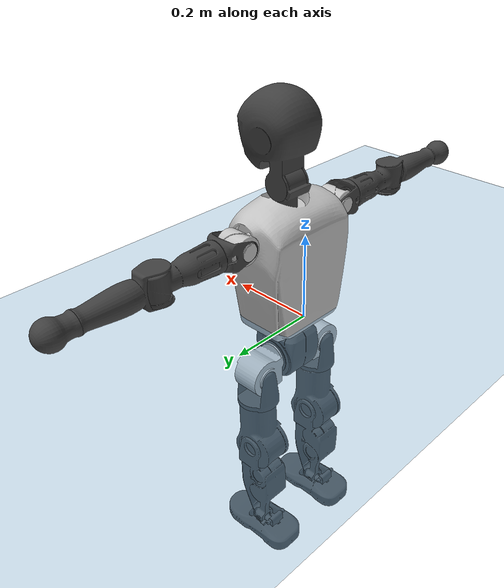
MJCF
<mujoco model="T1">
  <compiler angle="radian" assetdir="assets" balanceinertia="true" inertiafromgeom="false"/>

  <option timestep="0.005" density="1.2" viscosity="2e-05"/>

  <size nkey="1"/>

  <visual>
    <quality shadowsize="8192"/>
    <map shadowclip="0.5"/>
  </visual>

  <default>
    <default class="/">
      <joint armature="0.01" damping="0.01" frictionloss="0.1"/>
      <geom contype="0" conaffinity="0" group="1" solref="-1000 -80"/>
      <site size="0.01 0.005 0.005" group="5"/>
      <general forcelimited="true" biastype="affine" gainprm="25" biasprm="0 -25 -0.6"/>
      <default class="t1">
        <geom rgba="0.25 0.25 0.25 1"/>
        <default class="visual">
          <geom type="mesh" group="2"/>
        </default>
        <default class="collision">
          <geom group="3"/>
        </default>
        <default class="foot">
          <geom size="0.1115 0.05 0.015" type="box" condim="6" group="4" priority="1" solimp="0.015 1 0.015"/>
        </default>
        <default class="reward_collision_sphere">
          <geom group="5" rgba="1 0 0 1"/>
        </default>
      </default>
    </default>
  </default>

  <asset>
    <texture type="skybox" colorspace="auto" name="//unnamed_texture_0" builtin="gradient" rgb1="0.95 0.95 0.95" rgb2="0.95 0.95 0.95" width="100" height="600"/>
    <texture type="2d" colorspace="auto" name="texplane" builtin="checker" rgb1="0.345 0.575 0.748" rgb2="0.345 0.575 0.748" markrgb="1 1 1" width="512" height="512"/>
    <material name="MatPlane" class="/" texture="texplane" texuniform="true" texrepeat="2 2" specular="0.9"/>
    <mesh name="Trunk" class="/" file="Trunk.stl"/>
    <mesh name="H1" class="/" file="H1.stl"/>
    <mesh name="H2" class="/" file="H2.stl"/>
    <mesh name="AL1" class="/" file="AL1.stl"/>
    <mesh name="AL2" class="/" file="AL2.stl"/>
    <mesh name="AL3" class="/" file="AL3.stl"/>
    <mesh name="left_hand_link" class="/" file="left_hand_link.stl"/>
    <mesh name="AR1" class="/" file="AR1.stl"/>
    <mesh name="AR2" class="/" file="AR2.stl"/>
    <mesh name="AR3" class="/" file="AR3.stl"/>
    <mesh name="right_hand_link" class="/" file="right_hand_link.stl"/>
    <mesh name="Waist" class="/" file="Waist.stl"/>
    <mesh name="Hip_Pitch_Left" class="/" file="Hip_Pitch_Left.stl"/>
    <mesh name="Hip_Roll_Left" class="/" file="Hip_Roll_Left.stl"/>
    <mesh name="Hip_Yaw_Left" class="/" file="Hip_Yaw_Left.stl"/>
    <mesh name="Shank_Left" class="/" file="Shank_Left.stl"/>
    <mesh name="Ankle_Cross_Left" class="/" file="Ankle_Cross_Left.stl"/>
    <mesh name="left_foot_link" class="/" file="left_foot_link.stl"/>
    <mesh name="Hip_Pitch_Right" class="/" file="Hip_Pitch_Right.stl"/>
    <mesh name="Hip_Roll_Right" class="/" file="Hip_Roll_Right.stl"/>
    <mesh name="Hip_Yaw_Right" class="/" file="Hip_Yaw_Right.stl"/>
    <mesh name="Shank_Right" class="/" file="Shank_Right.stl"/>
    <mesh name="Ankle_Cross_Right" class="/" file="Ankle_Cross_Right.stl"/>
    <mesh name="right_foot_link" class="/" file="right_foot_link.stl"/>
  </asset>

  <worldbody>
    <geom name="floor" class="/" size="100 100 0.125" type="plane" group="0" material="MatPlane"/>
    <light name="toplight_shadow" class="/" pos="0 0 5" dir="0.0990148 0.0990148 -0.990148" type="directional" ambient="0.04 0.04 0.04" diffuse="0.55 0.55 0.55" specular="0.12 0.12 0.12"/>
    <light name="toplight_fill" class="/" pos="0 0 5" dir="0.0990148 0.0990148 -0.990148" type="directional" castshadow="false" ambient="0.04 0.04 0.04" diffuse="0.3 0.3 0.3" specular="0.08 0.08 0.08"/>
    <body name="trunk" childclass="t1" pos="0.000307362 -0.000338252 0.000170385" quat="1 0.000272244 -0.000231773 0.000367777">
      <inertial pos="0.0456651 -0.00160765 0.102164" quat="0.99996 -0.000622205 -0.0089416 0.000585973" mass="9.2568" diaginertia="0.0369452 0.0593018 0.0502035"/>
      <joint name="//unnamed_joint_0" type="free" armature="0" damping="0" frictionloss="0"/>
      <geom name="//unnamed_geom_1" class="visual" rgba="0.76 0.76 0.76 1" mesh="Trunk"/>
      <geom name="//unnamed_geom_2" class="collision" size="0.0690204 0.0920272 0.138041" pos="0.0499461 0 0.117678" type="box"/>
      <geom name="//unnamed_geom_3" class="reward_collision_sphere" size="0.105831" pos="0.0499461 0 0.0980646"/>
      <geom name="//unnamed_geom_4" class="reward_collision_sphere" size="0.0138041" pos="0.0499461 0.0805574 0"/>
      <geom name="//unnamed_geom_5" class="reward_collision_sphere" size="0.0138041" pos="0.0499461 -0.0805574 0"/>
      <geom name="//unnamed_geom_6" class="reward_collision_sphere" size="0.0138041" pos="0.0499461 0.101408 0.176516"/>
      <geom name="//unnamed_geom_7" class="reward_collision_sphere" size="0.0138041" pos="0.0499461 -0.101408 0.176516"/>
      <site name="imu" pos="-0.00999101 0.0105546 -0.00963425" size="0.00920272"/>
      <camera name="track" pos="0 -1.89547 0" quat="0.707107 0.707107 0 0" mode="trackcom"/>
      <camera name="ego_camera" pos="0.101557 0 0.411872" quat="-0.5 -0.5 0.5 0.5"/>
      <body name="H1" pos="0.0513395 0.000185764 0.238938" quat="1 0.000549347 0.000130926 -0.000798898">
        <inertial pos="-0.00125805 -0.000947166 0.0553232" quat="0.764351 -0.0127987 0.00114386 0.644672" mass="0.362182" diaginertia="9.72939e-05 0.000172011 0.000138125"/>
        <joint name="AAHead_yaw" pos="0 0 0" axis="-0.00152855 -0.000273809 0.999999" stiffness="0.000169465" range="-1.57014 1.5747" armature="0.0102066" damping="0.0010352" frictionloss="0.0906908"/>
        <geom name="//unnamed_geom_8" class="visual" mesh="H1"/>
        <body name="H2" pos="0.00176669 -9.22668e-05 0.0605525" quat="1 0.000349018 -4.33158e-05 0.000131405">
          <inertial pos="0.00599919 0.00141751 0.0963655" quat="0.98845 0.106156 -0.0745935 -0.0783212" mass="0.496283" diaginertia="0.000812797 0.00146916 0.00155492"/>
          <joint name="Head_pitch" pos="0 0 0" axis="0.00244234 -0.999997 -0.000931703" range="-1.22043 0.355378" armature="0.00863186" damping="0.00646109" frictionloss="0.0900392"/>
          <geom name="//unnamed_geom_9" class="visual" mesh="H2"/>
          <geom name="//unnamed_geom_10" class="collision" size="0.0736217" pos="0.00832435 0 0.107871"/>
          <geom name="//unnamed_geom_11" class="reward_collision_sphere" size="0.0828245" pos="0.0166487 0 0.0980646"/>
        </body>
      </body>
      <body name="AL1" pos="0.0475429 0.100394 0.213826" quat="1 0.000106233 0.000877713 4.26467e-05">
        <inertial pos="-0.00093648 0.0434908 -0.000148445" quat="0.503653 0.495868 -0.504578 0.495832" mass="0.414981" diaginertia="0.000544455 0.0010004 0.000268547"/>
        <joint name="Left_Shoulder_Pitch" pos="0 0 0" axis="-0.00376996 0.999992 -0.000900904" range="-3.32813 1.20915" armature="0.00963817" damping="0.00988425" frictionloss="0.0923546"/>
        <geom name="//unnamed_geom_12" class="visual" rgba="0.76 0.76 0.76 1" mesh="AL1"/>
        <body name="AL2" pos="0.00123526 0.0441812 5.69948e-05" quat="1 -1.33778e-05 -4.02581e-05 -5.32324e-05">
          <inertial pos="0.00354792 0.0364405 0.00122862" quat="0.487068 0.511996 -0.487867 0.512456" mass="0.12738" diaginertia="0.000160573 0.000259162 0.000159319"/>
          <joint name="Left_Shoulder_Roll" pos="0 0 0" axis="-0.999998 -0.00135918 -0.00155172" range="-1.53379 1.77883" armature="0.00836913" damping="0.0049812" frictionloss="0.0913607"/>
          <geom name="//unnamed_geom_13" class="visual" mesh="AL2"/>
          <body name="AL3" pos="0.00146949 0.0571789 -0.000843188" quat="1 1.9269e-05 -7.85156e-05 -7.38727e-05">
            <inertial pos="-0.000138806 0.0807639 -0.000109006" quat="0.704637 0.709562 -0.00202034 -0.00194556" mass="0.801531" diaginertia="0.00518018 0.00990888 0.000554368"/>
            <joint name="Left_Elbow_Pitch" pos="0 0 0" axis="0.00825787 -0.999937 -0.00755092" range="-2.23263 2.28836" armature="0.00812388" damping="0.00236031" frictionloss="0.0899861"/>
            <geom name="//unnamed_geom_14" class="visual" mesh="AL3"/>
            <geom name="//unnamed_geom_15" class="collision" size="0.0276082 0.0690204" pos="0 0.0473867 0" quat="0.707105 0.707108 0 0" type="cylinder"/>
            <geom name="//unnamed_geom_16" class="reward_collision_sphere" size="0.0331298"/>
            <body name="left_hand_link" pos="0.00012307 0.140418 0.0011469" quat="1 0.000152709 -0.000444204 2.35883e-05">
              <inertial pos="-0.00052969 0.103955 -0.000230501" quat="0.707987 0.706226 -0.000176299 -0.000444733" mass="0.252623" diaginertia="0.00328905 0.00630086 0.000192069"/>
              <joint name="Left_Elbow_Yaw" pos="0 0 0" axis="0.000558092 0.00437455 0.99999" range="-2.42673 0.00850088" armature="0.0101647" damping="0.0153961" frictionloss="0.0936179"/>
              <geom name="//unnamed_geom_17" class="visual" mesh="left_hand_link"/>
              <geom name="//unnamed_geom_18" class="collision" size="0.0276082 0.0805238" pos="0 0.123205 0" quat="0.707105 0.707108 0 0" type="cylinder"/>
              <geom name="//unnamed_geom_19" class="reward_collision_sphere" size="0.0460136"/>
              <geom name="//unnamed_geom_20" class="reward_collision_sphere" size="0.0322095" pos="0 0.104251 0"/>
              <geom name="//unnamed_geom_21" class="reward_collision_sphere" size="0.0322095" pos="0 0.203763 0"/>
            </body>
          </body>
        </body>
      </body>
      <body name="AR1" pos="0.0461868 -0.100016 0.214572" quat="1 -0.000126243 0.0005099 -0.00032237">
        <inertial pos="-0.00288913 -0.0438064 0.000351528" quat="0.502547 0.487669 -0.506209 0.503366" mass="0.410087" diaginertia="0.000551991 0.000998457 0.000272434"/>
        <joint name="Right_Shoulder_Pitch" pos="0 0 0" axis="0.00365375 -0.999993 -0.000948281" stiffness="0.00399433" range="-1.22783 3.31313" armature="0.00914139" damping="0.00605505" frictionloss="0.0901753"/>
        <geom name="//unnamed_geom_22" class="visual" rgba="0.76 0.76 0.76 1" mesh="AR1"/>
        <body name="AR2" pos="8.1564e-05 -0.0426951 -0.000173566" quat="1 0.000428775 0.000374449 -0.000190334">
          <inertial pos="0.00201215 -0.0355989 -5.91927e-05" quat="0.511792 0.4884 -0.511434 0.487821" mass="0.123801" diaginertia="0.000161169 0.000269121 0.000159161"/>
          <joint name="Right_Shoulder_Roll" pos="0 0 0" axis="-0.999983 0.000636763 -0.0057878" stiffness="0.00052735" range="-1.75035 1.61408" armature="0.00889811" damping="0.00801495" frictionloss="0.0927666"/>
          <geom name="//unnamed_geom_23" class="visual" mesh="AR2"/>
          <body name="AR3" pos="-0.000812745 -0.0573446 -0.000699643" quat="1 -1.16489e-05 -3.24858e-06 5.36833e-05">
            <inertial pos="-0.000524545 -0.0829026 0.00121766" quat="0.709257 0.704947 -0.000559162 -0.00177683" mass="0.789101" diaginertia="0.0050951 0.00971366 0.000569142"/>
            <joint name="Right_Elbow_Pitch" pos="0 0 0" axis="-0.000926423 0.999993 0.00356823" range="-2.27536 2.25682" armature="0.00929142" damping="0.0132513" frictionloss="0.0922642"/>
            <geom name="//unnamed_geom_24" class="visual" mesh="AR3"/>
            <geom name="//unnamed_geom_25" class="collision" size="0.0276082 0.0690204" pos="0 -0.0473867 0" quat="0.707105 0.707108 0 0" type="cylinder"/>
            <geom name="//unnamed_geom_26" class="reward_collision_sphere" size="0.0331298"/>
            <body name="right_hand_link" pos="-0.000525589 -0.138999 -0.000164192" quat="1 0.000227019 -0.000110759 0.000194021">
              <inertial pos="-0.000665618 -0.103609 0.00022663" quat="0.705321 0.708885 -0.000604984 -0.00211161" mass="0.259365" diaginertia="0.00325031 0.00624477 0.000194814"/>
              <joint name="Right_Elbow_Yaw" pos="0 0 0" axis="-0.00254905 0.00094275 0.999996" range="0.00452521 2.43273" armature="0.00930815" damping="0.010577" frictionloss="0.0929342"/>
              <geom name="//unnamed_geom_27" class="visual" mesh="right_hand_link"/>
              <geom name="//unnamed_geom_28" class="collision" size="0.0276082 0.0805238" pos="0 -0.123205 0" quat="0.707105 0.707108 0 0" type="cylinder"/>
              <geom name="//unnamed_geom_29" class="reward_collision_sphere" size="0.0460136"/>
              <geom name="//unnamed_geom_30" class="reward_collision_sphere" size="0.0322095" pos="0 -0.104251 0"/>
              <geom name="//unnamed_geom_31" class="reward_collision_sphere" size="0.0322095" pos="0 -0.203763 0"/>
            </body>
          </body>
        </body>
      </body>
      <body name="Waist" pos="0.0535736 -0.00206024 -0.113478" quat="1 -0.000249822 -5.76238e-05 -0.000348486">
        <inertial pos="-0.000734408 -0.000411337 0.0071771" quat="0.983172 -9.06206e-05 -0.182663 0.00269709" mass="2.05941" diaginertia="0.00211223 0.00413799 0.00431462"/>
        <joint name="Waist" pos="0 0 0" axis="-0.00861698 0.00457613 0.999952" range="-1.5917 1.58888" armature="0.0095569" damping="0.023684" frictionloss="0.0935767"/>
        <geom name="//unnamed_geom_32" class="visual" mesh="Waist"/>
        <body name="Hip_Pitch_Left" pos="-0.00129133 0.101009 0.000144342" quat="0.999999 -0.000153615 0.000450619 0.0013594">
          <inertial pos="0.000183383 -0.00522858 -0.0182548" quat="0.975051 0.221501 0.0144578 0.0018311" mass="0.7667" diaginertia="0.000703203 0.00109488 0.00113458"/>
          <joint name="Left_Hip_Pitch" pos="0 0 0" axis="-0.00702328 0.999974 -0.00185896" range="-1.782 1.57238" armature="0.00879342" damping="0.00769145" frictionloss="0.101927"/>
          <geom name="//unnamed_geom_33" class="visual" rgba="0.76 0.76 0.76 1" mesh="Hip_Pitch_Left"/>
          <body name="Hip_Roll_Left" pos="0.00258217 0.000950268 -0.0222725" quat="1 0.000209033 0.000870801 0.000284512">
            <inertial pos="0.00129352 0.00093008 -0.0545989" quat="0.707394 -0.0035983 -0.00707918 0.706775" mass="0.297028" diaginertia="0.000690505 0.00115586 0.000463933"/>
            <joint name="Left_Hip_Roll" pos="0 0 0" axis="-0.999997 0.000365859 -0.00221292" stiffness="0.0003175" range="-1.5711 0.199942" armature="0.00935171" damping="0.0156631" frictionloss="0.0925074"/>
            <geom name="//unnamed_geom_34" class="visual" mesh="Hip_Roll_Left"/>
            <geom name="//unnamed_geom_35" class="reward_collision_sphere" size="0.0506149"/>
            <body name="Hip_Yaw_Left" pos="0.00140808 -0.00106349 -0.0810499" quat="1 -0.000138033 -0.000249391 -6.64745e-05">
              <inertial pos="-0.005418 0.00182412 -0.0857329" quat="0.69768 -0.0375805 -0.0332703 0.714649" mass="1.67032" diaginertia="0.0102061 0.0191936 0.00233865"/>
              <joint name="Left_Hip_Yaw" pos="0 0 0" axis="-0.00215756 -0.00579712 -0.999981" range="-1.01487 1.00807" armature="0.00924653" damping="0.013111" frictionloss="0.0925458"/>
              <geom name="//unnamed_geom_36" class="visual" mesh="Hip_Yaw_Left"/>
              <geom name="//unnamed_geom_37" class="collision" size="0.0460136 0.0736217" type="cylinder"/>
              <body name="Shank_Left" pos="-0.00924547 -0.000178013 -0.131502" quat="1 -0.00036732 -0.000120559 -2.18683e-06">
                <inertial pos="-0.0052938 0.000891655 -0.123005" quat="0.997203 -0.00513987 -0.0234293 0.0707802" mass="1.3592" diaginertia="0.0139145 0.0263916 0.00169728"/>
                <joint name="Left_Knee_Pitch" pos="0 0 0" axis="-0.000213766 1 -0.000283883" stiffness="0.000352421" range="0.00476768 2.31241" armature="0.00954492" damping="0.00925362" frictionloss="0.0916905"/>
                <geom name="//unnamed_geom_38" class="visual" mesh="Shank_Left"/>
                <geom name="//unnamed_geom_39" class="collision" size="0.0460136 0.0690204" pos="0 0 -0.117678" type="cylinder"/>
                <geom name="//unnamed_geom_40" class="reward_collision_sphere" size="0.0598177"/>
                <body name="Ankle_Cross_Left" pos="-0.000819377 -0.00091967 -0.274948" quat="1 7.45873e-06 -3.29395e-05 0.000367336">
                  <inertial pos="-0.00342383 0.000437737 -0.00882907" quat="0.446357 0.549843 0.549806 0.442891" mass="0.0565476" diaginertia="1.16215e-05 1.94433e-05 1.02093e-05"/>
                  <joint name="Left_Ankle_Pitch" pos="0 0 0" axis="0.00199382 0.999995 -0.00235782" range="-0.912462 0.389887" armature="0.00908964" damping="0" frictionloss="0.091012"/>
                  <geom name="//unnamed_geom_41" class="visual" mesh="Ankle_Cross_Left"/>
                  <body name="left_foot_link" pos="-0.000577505 0.000728883 -0.0136791" quat="0.999999 -0.000415751 0.00101884 -0.000144337">
                    <inertial pos="0.000783618 -0.000656735 -0.00835594" quat="-0.00123573 0.620465 -0.00442593 0.784221" mass="0.549596" diaginertia="0.0011235 0.00187939 0.0021035"/>
                    <joint name="Left_Ankle_Roll" pos="0 0 0" axis="-0.999998 0.0021034 0.000415514" stiffness="0.000735206" range="-0.446181 0.484038" armature="0.00924648" damping="0.0105181" frictionloss="0.103218"/>
                    <geom name="//unnamed_geom_42" class="visual" mesh="left_foot_link"/>
                    <geom name="left_foot" class="foot" size="0.105663 0.0434499 0.0152226" pos="0.00832435 0 -0.0147097"/>
                    <geom name="//unnamed_geom_44" class="reward_collision_sphere" size="0.0478541" pos="0.00832435 0 -0.0147097"/>
                    <geom name="//unnamed_geom_45" class="reward_collision_sphere" size="0.0276082" pos="0.0790813 -0.0217979 -0.0147097"/>
                    <geom name="//unnamed_geom_46" class="reward_collision_sphere" size="0.0276082" pos="-0.0582704 -0.0217979 -0.0147097"/>
                    <site name="left_foot" class="foot" pos="0.00832435 0 -0.0147097" size="0.00920272"/>
                  </body>
                </body>
              </body>
            </body>
          </body>
        </body>
        <body name="Hip_Pitch_Right" pos="4.61652e-05 -0.100556 -0.000201361" quat="1 6.88497e-05 6.80584e-05 2.11048e-05">
          <inertial pos="0.00150406 0.00706596 -0.0167684" quat="0.974304 -0.224363 0.0192023 0.00490666" mass="0.782684" diaginertia="0.00070015 0.00107831 0.00111463"/>
          <joint name="Right_Hip_Pitch" pos="0 0 0" axis="-0.00128756 -0.999999 -0.000263816" stiffness="0.00276931" range="-1.56376 1.80662" armature="0.00885374" damping="0.00727344" frictionloss="0.0908318"/>
          <geom name="//unnamed_geom_47" class="visual" rgba="0.76 0.76 0.76 1" mesh="Hip_Pitch_Right"/>
          <body name="Hip_Roll_Right" pos="0.000531617 6.45498e-05 -0.021372" quat="1 0.000150621 2.11922e-06 0.000144783">
            <inertial pos="0.000784016 -0.000644691 -0.0524707" quat="0.707492 -0.00388678 -0.00865116 0.706657" mass="0.294323" diaginertia="0.000693 0.00115678 0.000454696"/>
            <joint name="Right_Hip_Roll" pos="0 0 0" axis="-0.999996 0.000225912 0.00278753" range="-0.199577 1.56742" armature="0.00939562" damping="0.00697418" frictionloss="0.0914219"/>
            <geom name="//unnamed_geom_48" class="visual" mesh="Hip_Roll_Right"/>
            <geom name="//unnamed_geom_49" class="reward_collision_sphere" size="0.0506149"/>
            <body name="Hip_Yaw_Right" pos="-0.00108679 0.00201822 -0.0808732" quat="1 1.20129e-05 -2.17904e-05 1.65277e-05">
              <inertial pos="-0.0062781 -8.06076e-05 -0.0898527" quat="0.711167 -0.0298299 -0.0319469 0.701663" mass="1.71411" diaginertia="0.0102716 0.0194224 0.00235881"/>
              <joint name="Right_Hip_Yaw" pos="0 0 0" axis="-0.000763385 0.000592927 -1" range="-0.974589 1.00873" armature="0.00942184" damping="0.0128027" frictionloss="0.0927446"/>
              <geom name="//unnamed_geom_50" class="visual" mesh="Hip_Yaw_Right"/>
              <geom name="//unnamed_geom_51" class="collision" size="0.0460136 0.0736217" type="cylinder"/>
              <body name="Shank_Right" pos="-0.01197 0.000258244 -0.131155" quat="1 -0.000142806 -8.59257e-06 -0.00020799">
                <inertial pos="-0.00267263 -0.0010058 -0.119381" quat="0.999394 -0.00497155 -0.0224135 -0.0261566" mass="1.36696" diaginertia="0.0138384 0.0268045 0.00175647"/>
                <joint name="Right_Knee_Pitch" pos="0 0 0" axis="0.00305729 -0.999982 -0.00522213" range="-2.3395 -0.000903336" armature="0.00917841" damping="0.000985229" frictionloss="0.0961979"/>
                <geom name="//unnamed_geom_52" class="visual" mesh="Shank_Right"/>
                <geom name="//unnamed_geom_53" class="collision" size="0.0460136 0.0690204" pos="0 0 -0.117678" type="cylinder"/>
                <geom name="//unnamed_geom_54" class="reward_collision_sphere" size="0.0598177"/>
                <body name="Ankle_Cross_Right" pos="0.00143775 -0.00298885 -0.275091" quat="0.999999 -0.00054144 0.000817058 0.000414209">
                  <inertial pos="-0.00260617 0.000611361 -0.00808837" quat="0.443901 0.550766 0.550706 0.443093" mass="0.0571376" diaginertia="1.13931e-05 1.96591e-05 1.04603e-05"/>
                  <joint name="Right_Ankle_Pitch" pos="0 0 0" axis="0.00470172 -0.999982 -0.00376607" range="-0.335957 0.912496" armature="0.00897131" damping="0.0122538" frictionloss="0.0915797"/>
                  <geom name="//unnamed_geom_55" class="visual" mesh="Ankle_Cross_Right"/>
                  <body name="right_foot_link" pos="0.000113601 -0.000956982 -0.0116906" quat="1 6.096e-05 9.16918e-05 -0.000499979">
                    <inertial pos="-0.000861821 -0.000231894 -0.00882194" quat="0.00102998 0.617892 -0.00293919 0.786257" mass="0.534139" diaginertia="0.00105257 0.00182081 0.00201197"/>
                    <joint name="Right_Ankle_Roll" pos="0 0 0" axis="-0.999993 0.00312039 -0.00194664" range="-0.446158 0.45346" armature="0.00877377" damping="0.00806694" frictionloss="0.0895593"/>
                    <geom name="//unnamed_geom_56" class="visual" mesh="right_foot_link"/>
                    <geom name="right_foot" class="foot" size="0.101741 0.0440494 0.0138664" pos="0.00832435 0 -0.0147097"/>
                    <geom name="//unnamed_geom_58" class="reward_collision_sphere" size="0.0368109"/>
                    <geom name="//unnamed_geom_59" class="reward_collision_sphere" size="0.0276082" pos="0.00832435 0 -0.0147097"/>
                    <geom name="//unnamed_geom_60" class="reward_collision_sphere" size="0.0276082" pos="0.0790813 0.0217979 -0.0147097"/>
                    <geom name="//unnamed_geom_61" class="reward_collision_sphere" size="0.0276082" pos="-0.0582704 0.0217979 -0.0147097"/>
                    <site name="right_foot" class="foot" pos="0.00832435 0 -0.0147097" size="0.00920272"/>
                  </body>
                </body>
              </body>
            </body>
          </body>
        </body>
      </body>
    </body>
  </worldbody>

  <contact>
    <pair class="/" geom1="floor" geom2="left_foot" name="//unnamed_contact_0"/>
    <pair class="/" geom1="floor" geom2="right_foot" name="//unnamed_contact_1"/>
  </contact>

  <actuator>
    <general name="AAHead_yaw" class="/" joint="AAHead_yaw" forcerange="-6.67337 6.67337" gainprm="21.7443" biasprm="0 -21.7443 -0.553709"/>
    <general name="Head_pitch" class="/" joint="Head_pitch" forcerange="-6.2814 6.2814" gainprm="21.7443" biasprm="0 -21.7443 -0.553709"/>
    <general name="Left_Shoulder_Pitch" class="/" joint="Left_Shoulder_Pitch" forcerange="-16.7587 16.7587" gainprm="21.7443" biasprm="0 -21.7443 -0.553709"/>
    <general name="Left_Shoulder_Roll" class="/" joint="Left_Shoulder_Roll" forcerange="-16.7935 16.7935" gainprm="21.7443" biasprm="0 -21.7443 -0.553709"/>
    <general name="Left_Elbow_Pitch" class="/" joint="Left_Elbow_Pitch" forcerange="-15.2772 15.2772" gainprm="21.7443" biasprm="0 -21.7443 -0.553709"/>
    <general name="Left_Elbow_Yaw" class="/" joint="Left_Elbow_Yaw" forcerange="-17.7105 17.7105" gainprm="21.7443" biasprm="0 -21.7443 -0.553709"/>
    <general name="Right_Shoulder_Pitch" class="/" joint="Right_Shoulder_Pitch" forcerange="-17.8279 17.8279" gainprm="21.7443" biasprm="0 -21.7443 -0.553709"/>
    <general name="Right_Shoulder_Roll" class="/" joint="Right_Shoulder_Roll" forcerange="-17.1891 17.1891" gainprm="21.7443" biasprm="0 -21.7443 -0.553709"/>
    <general name="Right_Elbow_Pitch" class="/" joint="Right_Elbow_Pitch" forcerange="-16.5697 16.5697" gainprm="21.7443" biasprm="0 -21.7443 -0.553709"/>
    <general name="Right_Elbow_Yaw" class="/" joint="Right_Elbow_Yaw" forcerange="-16.5786 16.5786" gainprm="21.7443" biasprm="0 -21.7443 -0.553709"/>
    <general name="Waist" class="/" joint="Waist" forcerange="-27.4779 27.4779" gainprm="21.7443" biasprm="0 -21.7443 -0.553709"/>
    <general name="Left_Hip_Pitch" class="/" joint="Left_Hip_Pitch" forcerange="-42.8945 42.8945" gainprm="21.7443" biasprm="0 -21.7443 -0.553709"/>
    <general name="Left_Hip_Roll" class="/" joint="Left_Hip_Roll" forcerange="-29.5009 29.5009" gainprm="21.7443" biasprm="0 -21.7443 -0.553709"/>
    <general name="Left_Hip_Yaw" class="/" joint="Left_Hip_Yaw" forcerange="-25.3998 25.3998" gainprm="21.7443" biasprm="0 -21.7443 -0.553709"/>
    <general name="Left_Knee_Pitch" class="/" joint="Left_Knee_Pitch" forcerange="-50.3968 50.3968" gainprm="21.7443" biasprm="0 -21.7443 -0.553709"/>
    <general name="Left_Ankle_Pitch" class="/" joint="Left_Ankle_Pitch" forcerange="-18.1861 18.1861" gainprm="21.7443" biasprm="0 -21.7443 -0.553709"/>
    <general name="Left_Ankle_Roll" class="/" joint="Left_Ankle_Roll" forcerange="-13.8649 13.8649" gainprm="21.7443" biasprm="0 -21.7443 -0.553709"/>
    <general name="Right_Hip_Pitch" class="/" joint="Right_Hip_Pitch" forcerange="-39.947 39.947" gainprm="21.7443" biasprm="0 -21.7443 -0.553709"/>
    <general name="Right_Hip_Roll" class="/" joint="Right_Hip_Roll" forcerange="-27.7818 27.7818" gainprm="21.7443" biasprm="0 -21.7443 -0.553709"/>
    <general name="Right_Hip_Yaw" class="/" joint="Right_Hip_Yaw" forcerange="-27.0466 27.0466" gainprm="21.7443" biasprm="0 -21.7443 -0.553709"/>
    <general name="Right_Knee_Pitch" class="/" joint="Right_Knee_Pitch" forcerange="-54.8215 54.8215" gainprm="21.7443" biasprm="0 -21.7443 -0.553709"/>
    <general name="Right_Ankle_Pitch" class="/" joint="Right_Ankle_Pitch" forcerange="-17.4443 17.4443" gainprm="21.7443" biasprm="0 -21.7443 -0.553709"/>
    <general name="Right_Ankle_Roll" class="/" joint="Right_Ankle_Roll" forcerange="-13.7965 13.7965" gainprm="21.7443" biasprm="0 -21.7443 -0.553709"/>
  </actuator>

  <sensor>
    <gyro site="imu" name="imu_angular_velocity"/>
    <velocimeter site="imu" name="imu_linear_velocity"/>
    <framelinvel objtype="site" objname="left_foot" name="left_foot_global_linear_velocity"/>
    <framelinvel objtype="site" objname="right_foot" name="right_foot_global_linear_velocity"/>
  </sensor>

  <keyframe>
    <key name="home" qpos="0 0 0.6385 1 0 0 0 0 0 0 1.4 0 -0.4 0 -1.4 0 0.4 0 -0.4 0 0 0.8 -0.4 0 0.4 0 0 -0.8 0.4 0"/>
  </keyframe>
</mujoco>
